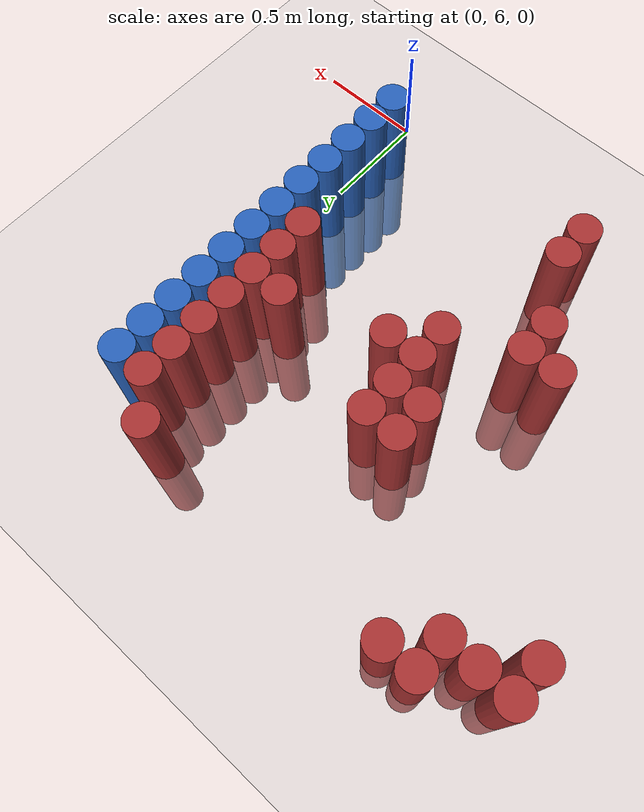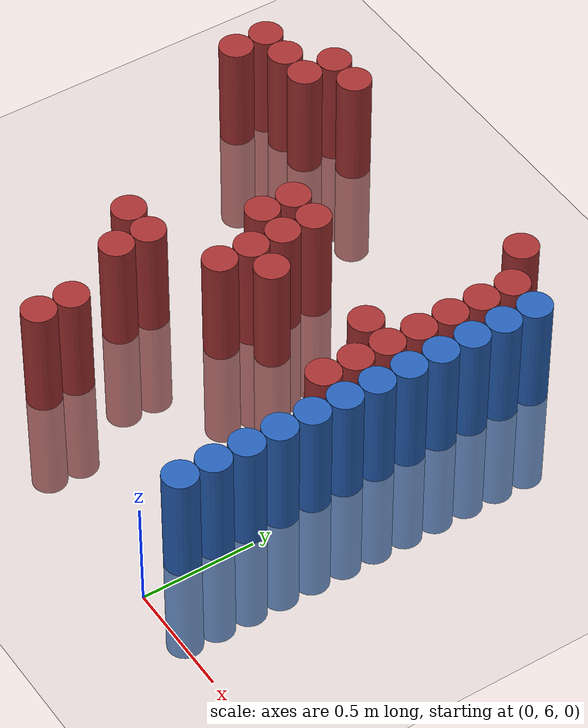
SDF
<sdf version="1.6">
 <world name="default">
  <model name="ground_plane">
   <static>1</static>
   <link name="link">
    <collision name="collision">
     <geometry><plane><normal>0 0 1</normal><size>100 100</size></plane></geometry>
     <surface><friction><ode><mu>100</mu><mu2>50</mu2></ode></friction></surface>
    </collision>
    <visual name="visual">
     <cast_shadows>0</cast_shadows>
     <geometry><plane><normal>0 0 1</normal><size>100 100</size></plane></geometry>
     <material>
      <script><uri>file://media/materials/scripts/gazebo.material</uri><name>Gazebo/Grey</name></script>
     </material>
    </visual>
   </link>
  </model>
  <model name="unit_cylinder_208">
   <static>1</static>
   <pose>-2.025000 7.725000 0.000000 0.000000 0.000000 0.000000</pose>
   <link name="link">
    <inertial>
     <mass>1</mass>
     <inertia><ixx>0.145833</ixx><ixy>0</ixy><ixz>0</ixz><iyy>0.145833</iyy><iyz>0</iyz><izz>0.125</izz></inertia>
    </inertial>
    <collision name="collision">
     <geometry><cylinder><radius>0.075000</radius><length>1</length></cylinder></geometry>
    </collision>
    <visual name="visual">
     <geometry><cylinder><radius>0.075000</radius><length>1</length></cylinder></geometry>
     <material>
      <ambient>0.648000 0.192000 0.192000 1</ambient>
      <diffuse>0.648000 0.192000 0.192000 1</diffuse>
     </material>
     <material>
      <script><name>Gazebo/Grey</name><uri>file://media/materials/scripts/gazebo.material</uri></script>
     </material>
    </visual>
    <sensor name="sensor_contact" type="contact"><contact><collision>collision</collision></contact></sensor>
   </link>
   <plugin filename="gz-sim-touchplugin-system" name="gz::sim::systems::TouchPlugin">
    <target>robot</target>
    <namespace>robot</namespace>
    <time>0.001</time>
    <enabled>true</enabled>
   </plugin>
  </model>
  <model name="unit_cylinder_209">
   <static>1</static>
   <pose>-2.025000 7.875000 0.000000 0.000000 0.000000 0.000000</pose>
   <link name="link">
    <inertial>
     <mass>1</mass>
     <inertia><ixx>0.145833</ixx><ixy>0</ixy><ixz>0</ixz><iyy>0.145833</iyy><iyz>0</iyz><izz>0.125</izz></inertia>
    </inertial>
    <collision name="collision">
     <geometry><cylinder><radius>0.075000</radius><length>1</length></cylinder></geometry>
    </collision>
    <visual name="visual">
     <geometry><cylinder><radius>0.075000</radius><length>1</length></cylinder></geometry>
     <material>
      <ambient>0.648000 0.192000 0.192000 1</ambient>
      <diffuse>0.648000 0.192000 0.192000 1</diffuse>
     </material>
     <material>
      <script><name>Gazebo/Grey</name><uri>file://media/materials/scripts/gazebo.material</uri></script>
     </material>
    </visual>
    <sensor name="sensor_contact" type="contact"><contact><collision>collision</collision></contact></sensor>
   </link>
   <plugin filename="gz-sim-touchplugin-system" name="gz::sim::systems::TouchPlugin">
    <target>robot</target>
    <namespace>robot</namespace>
    <time>0.001</time>
    <enabled>true</enabled>
   </plugin>
  </model>
  <model name="unit_cylinder_213">
   <static>1</static>
   <pose>-1.875000 7.875000 0.000000 0.000000 0.000000 0.000000</pose>
   <link name="link">
    <inertial>
     <mass>1</mass>
     <inertia><ixx>0.145833</ixx><ixy>0</ixy><ixz>0</ixz><iyy>0.145833</iyy><iyz>0</iyz><izz>0.125</izz></inertia>
    </inertial>
    <collision name="collision">
     <geometry><cylinder><radius>0.075000</radius><length>1</length></cylinder></geometry>
    </collision>
    <visual name="visual">
     <geometry><cylinder><radius>0.075000</radius><length>1</length></cylinder></geometry>
     <material>
      <ambient>0.648000 0.192000 0.192000 1</ambient>
      <diffuse>0.648000 0.192000 0.192000 1</diffuse>
     </material>
     <material>
      <script><name>Gazebo/Grey</name><uri>file://media/materials/scripts/gazebo.material</uri></script>
     </material>
    </visual>
    <sensor name="sensor_contact" type="contact"><contact><collision>collision</collision></contact></sensor>
   </link>
   <plugin filename="gz-sim-touchplugin-system" name="gz::sim::systems::TouchPlugin">
    <target>robot</target>
    <namespace>robot</namespace>
    <time>0.001</time>
    <enabled>true</enabled>
   </plugin>
  </model>
  <model name="unit_cylinder_218">
   <static>1</static>
   <pose>-1.725000 7.875000 0.000000 0.000000 0.000000 0.000000</pose>
   <link name="link">
    <inertial>
     <mass>1</mass>
     <inertia><ixx>0.145833</ixx><ixy>0</ixy><ixz>0</ixz><iyy>0.145833</iyy><iyz>0</iyz><izz>0.125</izz></inertia>
    </inertial>
    <collision name="collision">
     <geometry><cylinder><radius>0.075000</radius><length>1</length></cylinder></geometry>
    </collision>
    <visual name="visual">
     <geometry><cylinder><radius>0.075000</radius><length>1</length></cylinder></geometry>
     <material>
      <ambient>0.648000 0.192000 0.192000 1</ambient>
      <diffuse>0.648000 0.192000 0.192000 1</diffuse>
     </material>
     <material>
      <script><name>Gazebo/Grey</name><uri>file://media/materials/scripts/gazebo.material</uri></script>
     </material>
    </visual>
    <sensor name="sensor_contact" type="contact"><contact><collision>collision</collision></contact></sensor>
   </link>
   <plugin filename="gz-sim-touchplugin-system" name="gz::sim::systems::TouchPlugin">
    <target>robot</target>
    <namespace>robot</namespace>
    <time>0.001</time>
    <enabled>true</enabled>
   </plugin>
  </model>
  <model name="unit_cylinder_219">
   <static>1</static>
   <pose>-1.725000 8.025000 0.000000 0.000000 0.000000 0.000000</pose>
   <link name="link">
    <inertial>
     <mass>1</mass>
     <inertia><ixx>0.145833</ixx><ixy>0</ixy><ixz>0</ixz><iyy>0.145833</iyy><iyz>0</iyz><izz>0.125</izz></inertia>
    </inertial>
    <collision name="collision">
     <geometry><cylinder><radius>0.075000</radius><length>1</length></cylinder></geometry>
    </collision>
    <visual name="visual">
     <geometry><cylinder><radius>0.075000</radius><length>1</length></cylinder></geometry>
     <material>
      <ambient>0.648000 0.192000 0.192000 1</ambient>
      <diffuse>0.648000 0.192000 0.192000 1</diffuse>
     </material>
     <material>
      <script><name>Gazebo/Grey</name><uri>file://media/materials/scripts/gazebo.material</uri></script>
     </material>
    </visual>
    <sensor name="sensor_contact" type="contact"><contact><collision>collision</collision></contact></sensor>
   </link>
   <plugin filename="gz-sim-touchplugin-system" name="gz::sim::systems::TouchPlugin">
    <target>robot</target>
    <namespace>robot</namespace>
    <time>0.001</time>
    <enabled>true</enabled>
   </plugin>
  </model>
  <model name="unit_cylinder_225">
   <static>1</static>
   <pose>-1.575000 8.025000 0.000000 0.000000 0.000000 0.000000</pose>
   <link name="link">
    <inertial>
     <mass>1</mass>
     <inertia><ixx>0.145833</ixx><ixy>0</ixy><ixz>0</ixz><iyy>0.145833</iyy><iyz>0</iyz><izz>0.125</izz></inertia>
    </inertial>
    <collision name="collision">
     <geometry><cylinder><radius>0.075000</radius><length>1</length></cylinder></geometry>
    </collision>
    <visual name="visual">
     <geometry><cylinder><radius>0.075000</radius><length>1</length></cylinder></geometry>
     <material>
      <ambient>0.648000 0.192000 0.192000 1</ambient>
      <diffuse>0.648000 0.192000 0.192000 1</diffuse>
     </material>
     <material>
      <script><name>Gazebo/Grey</name><uri>file://media/materials/scripts/gazebo.material</uri></script>
     </material>
    </visual>
    <sensor name="sensor_contact" type="contact"><contact><collision>collision</collision></contact></sensor>
   </link>
   <plugin filename="gz-sim-touchplugin-system" name="gz::sim::systems::TouchPlugin">
    <target>robot</target>
    <namespace>robot</namespace>
    <time>0.001</time>
    <enabled>true</enabled>
   </plugin>
  </model>
  <model name="unit_cylinder_228">
   <static>1</static>
   <pose>-1.425000 6.825000 0.000000 0.000000 0.000000 0.000000</pose>
   <link name="link">
    <inertial>
     <mass>1</mass>
     <inertia><ixx>0.145833</ixx><ixy>0</ixy><ixz>0</ixz><iyy>0.145833</iyy><iyz>0</iyz><izz>0.125</izz></inertia>
    </inertial>
    <collision name="collision">
     <geometry><cylinder><radius>0.075000</radius><length>1</length></cylinder></geometry>
    </collision>
    <visual name="visual">
     <geometry><cylinder><radius>0.075000</radius><length>1</length></cylinder></geometry>
     <material>
      <ambient>0.648000 0.192000 0.192000 1</ambient>
      <diffuse>0.648000 0.192000 0.192000 1</diffuse>
     </material>
     <material>
      <script><name>Gazebo/Grey</name><uri>file://media/materials/scripts/gazebo.material</uri></script>
     </material>
    </visual>
    <sensor name="sensor_contact" type="contact"><contact><collision>collision</collision></contact></sensor>
   </link>
   <plugin filename="gz-sim-touchplugin-system" name="gz::sim::systems::TouchPlugin">
    <target>robot</target>
    <namespace>robot</namespace>
    <time>0.001</time>
    <enabled>true</enabled>
   </plugin>
  </model>
  <model name="unit_cylinder_233">
   <static>1</static>
   <pose>-1.275000 6.675000 0.000000 0.000000 0.000000 0.000000</pose>
   <link name="link">
    <inertial>
     <mass>1</mass>
     <inertia><ixx>0.145833</ixx><ixy>0</ixy><ixz>0</ixz><iyy>0.145833</iyy><iyz>0</iyz><izz>0.125</izz></inertia>
    </inertial>
    <collision name="collision">
     <geometry><cylinder><radius>0.075000</radius><length>1</length></cylinder></geometry>
    </collision>
    <visual name="visual">
     <geometry><cylinder><radius>0.075000</radius><length>1</length></cylinder></geometry>
     <material>
      <ambient>0.648000 0.192000 0.192000 1</ambient>
      <diffuse>0.648000 0.192000 0.192000 1</diffuse>
     </material>
     <material>
      <script><name>Gazebo/Grey</name><uri>file://media/materials/scripts/gazebo.material</uri></script>
     </material>
    </visual>
    <sensor name="sensor_contact" type="contact"><contact><collision>collision</collision></contact></sensor>
   </link>
   <plugin filename="gz-sim-touchplugin-system" name="gz::sim::systems::TouchPlugin">
    <target>robot</target>
    <namespace>robot</namespace>
    <time>0.001</time>
    <enabled>true</enabled>
   </plugin>
  </model>
  <model name="unit_cylinder_234">
   <static>1</static>
   <pose>-1.275000 6.825000 0.000000 0.000000 0.000000 0.000000</pose>
   <link name="link">
    <inertial>
     <mass>1</mass>
     <inertia><ixx>0.145833</ixx><ixy>0</ixy><ixz>0</ixz><iyy>0.145833</iyy><iyz>0</iyz><izz>0.125</izz></inertia>
    </inertial>
    <collision name="collision">
     <geometry><cylinder><radius>0.075000</radius><length>1</length></cylinder></geometry>
    </collision>
    <visual name="visual">
     <geometry><cylinder><radius>0.075000</radius><length>1</length></cylinder></geometry>
     <material>
      <ambient>0.648000 0.192000 0.192000 1</ambient>
      <diffuse>0.648000 0.192000 0.192000 1</diffuse>
     </material>
     <material>
      <script><name>Gazebo/Grey</name><uri>file://media/materials/scripts/gazebo.material</uri></script>
     </material>
    </visual>
    <sensor name="sensor_contact" type="contact"><contact><collision>collision</collision></contact></sensor>
   </link>
   <plugin filename="gz-sim-touchplugin-system" name="gz::sim::systems::TouchPlugin">
    <target>robot</target>
    <namespace>robot</namespace>
    <time>0.001</time>
    <enabled>true</enabled>
   </plugin>
  </model>
  <model name="unit_cylinder_238">
   <static>1</static>
   <pose>-1.125000 6.225000 0.000000 0.000000 0.000000 0.000000</pose>
   <link name="link">
    <inertial>
     <mass>1</mass>
     <inertia><ixx>0.145833</ixx><ixy>0</ixy><ixz>0</ixz><iyy>0.145833</iyy><iyz>0</iyz><izz>0.125</izz></inertia>
    </inertial>
    <collision name="collision">
     <geometry><cylinder><radius>0.075000</radius><length>1</length></cylinder></geometry>
    </collision>
    <visual name="visual">
     <geometry><cylinder><radius>0.075000</radius><length>1</length></cylinder></geometry>
     <material>
      <ambient>0.648000 0.192000 0.192000 1</ambient>
      <diffuse>0.648000 0.192000 0.192000 1</diffuse>
     </material>
     <material>
      <script><name>Gazebo/Grey</name><uri>file://media/materials/scripts/gazebo.material</uri></script>
     </material>
    </visual>
    <sensor name="sensor_contact" type="contact"><contact><collision>collision</collision></contact></sensor>
   </link>
   <plugin filename="gz-sim-touchplugin-system" name="gz::sim::systems::TouchPlugin">
    <target>robot</target>
    <namespace>robot</namespace>
    <time>0.001</time>
    <enabled>true</enabled>
   </plugin>
  </model>
  <model name="unit_cylinder_239">
   <static>1</static>
   <pose>-1.125000 6.375000 0.000000 0.000000 0.000000 0.000000</pose>
   <link name="link">
    <inertial>
     <mass>1</mass>
     <inertia><ixx>0.145833</ixx><ixy>0</ixy><ixz>0</ixz><iyy>0.145833</iyy><iyz>0</iyz><izz>0.125</izz></inertia>
    </inertial>
    <collision name="collision">
     <geometry><cylinder><radius>0.075000</radius><length>1</length></cylinder></geometry>
    </collision>
    <visual name="visual">
     <geometry><cylinder><radius>0.075000</radius><length>1</length></cylinder></geometry>
     <material>
      <ambient>0.648000 0.192000 0.192000 1</ambient>
      <diffuse>0.648000 0.192000 0.192000 1</diffuse>
     </material>
     <material>
      <script><name>Gazebo/Grey</name><uri>file://media/materials/scripts/gazebo.material</uri></script>
     </material>
    </visual>
    <sensor name="sensor_contact" type="contact"><contact><collision>collision</collision></contact></sensor>
   </link>
   <plugin filename="gz-sim-touchplugin-system" name="gz::sim::systems::TouchPlugin">
    <target>robot</target>
    <namespace>robot</namespace>
    <time>0.001</time>
    <enabled>true</enabled>
   </plugin>
  </model>
  <model name="unit_cylinder_240">
   <static>1</static>
   <pose>-1.125000 7.275000 0.000000 0.000000 0.000000 0.000000</pose>
   <link name="link">
    <inertial>
     <mass>1</mass>
     <inertia><ixx>0.145833</ixx><ixy>0</ixy><ixz>0</ixz><iyy>0.145833</iyy><iyz>0</iyz><izz>0.125</izz></inertia>
    </inertial>
    <collision name="collision">
     <geometry><cylinder><radius>0.075000</radius><length>1</length></cylinder></geometry>
    </collision>
    <visual name="visual">
     <geometry><cylinder><radius>0.075000</radius><length>1</length></cylinder></geometry>
     <material>
      <ambient>0.648000 0.192000 0.192000 1</ambient>
      <diffuse>0.648000 0.192000 0.192000 1</diffuse>
     </material>
     <material>
      <script><name>Gazebo/Grey</name><uri>file://media/materials/scripts/gazebo.material</uri></script>
     </material>
    </visual>
    <sensor name="sensor_contact" type="contact"><contact><collision>collision</collision></contact></sensor>
   </link>
   <plugin filename="gz-sim-touchplugin-system" name="gz::sim::systems::TouchPlugin">
    <target>robot</target>
    <namespace>robot</namespace>
    <time>0.001</time>
    <enabled>true</enabled>
   </plugin>
  </model>
  <model name="unit_cylinder_241">
   <static>1</static>
   <pose>-1.125000 7.425000 0.000000 0.000000 0.000000 0.000000</pose>
   <link name="link">
    <inertial>
     <mass>1</mass>
     <inertia><ixx>0.145833</ixx><ixy>0</ixy><ixz>0</ixz><iyy>0.145833</iyy><iyz>0</iyz><izz>0.125</izz></inertia>
    </inertial>
    <collision name="collision">
     <geometry><cylinder><radius>0.075000</radius><length>1</length></cylinder></geometry>
    </collision>
    <visual name="visual">
     <geometry><cylinder><radius>0.075000</radius><length>1</length></cylinder></geometry>
     <material>
      <ambient>0.648000 0.192000 0.192000 1</ambient>
      <diffuse>0.648000 0.192000 0.192000 1</diffuse>
     </material>
     <material>
      <script><name>Gazebo/Grey</name><uri>file://media/materials/scripts/gazebo.material</uri></script>
     </material>
    </visual>
    <sensor name="sensor_contact" type="contact"><contact><collision>collision</collision></contact></sensor>
   </link>
   <plugin filename="gz-sim-touchplugin-system" name="gz::sim::systems::TouchPlugin">
    <target>robot</target>
    <namespace>robot</namespace>
    <time>0.001</time>
    <enabled>true</enabled>
   </plugin>
  </model>
  <model name="unit_cylinder_246">
   <static>1</static>
   <pose>-0.975000 6.975000 0.000000 0.000000 0.000000 0.000000</pose>
   <link name="link">
    <inertial>
     <mass>1</mass>
     <inertia><ixx>0.145833</ixx><ixy>0</ixy><ixz>0</ixz><iyy>0.145833</iyy><iyz>0</iyz><izz>0.125</izz></inertia>
    </inertial>
    <collision name="collision">
     <geometry><cylinder><radius>0.075000</radius><length>1</length></cylinder></geometry>
    </collision>
    <visual name="visual">
     <geometry><cylinder><radius>0.075000</radius><length>1</length></cylinder></geometry>
     <material>
      <ambient>0.648000 0.192000 0.192000 1</ambient>
      <diffuse>0.648000 0.192000 0.192000 1</diffuse>
     </material>
     <material>
      <script><name>Gazebo/Grey</name><uri>file://media/materials/scripts/gazebo.material</uri></script>
     </material>
    </visual>
    <sensor name="sensor_contact" type="contact"><contact><collision>collision</collision></contact></sensor>
   </link>
   <plugin filename="gz-sim-touchplugin-system" name="gz::sim::systems::TouchPlugin">
    <target>robot</target>
    <namespace>robot</namespace>
    <time>0.001</time>
    <enabled>true</enabled>
   </plugin>
  </model>
  <model name="unit_cylinder_247">
   <static>1</static>
   <pose>-0.975000 7.125000 0.000000 0.000000 0.000000 0.000000</pose>
   <link name="link">
    <inertial>
     <mass>1</mass>
     <inertia><ixx>0.145833</ixx><ixy>0</ixy><ixz>0</ixz><iyy>0.145833</iyy><iyz>0</iyz><izz>0.125</izz></inertia>
    </inertial>
    <collision name="collision">
     <geometry><cylinder><radius>0.075000</radius><length>1</length></cylinder></geometry>
    </collision>
    <visual name="visual">
     <geometry><cylinder><radius>0.075000</radius><length>1</length></cylinder></geometry>
     <material>
      <ambient>0.648000 0.192000 0.192000 1</ambient>
      <diffuse>0.648000 0.192000 0.192000 1</diffuse>
     </material>
     <material>
      <script><name>Gazebo/Grey</name><uri>file://media/materials/scripts/gazebo.material</uri></script>
     </material>
    </visual>
    <sensor name="sensor_contact" type="contact"><contact><collision>collision</collision></contact></sensor>
   </link>
   <plugin filename="gz-sim-touchplugin-system" name="gz::sim::systems::TouchPlugin">
    <target>robot</target>
    <namespace>robot</namespace>
    <time>0.001</time>
    <enabled>true</enabled>
   </plugin>
  </model>
  <model name="unit_cylinder_248">
   <static>1</static>
   <pose>-0.975000 7.275000 0.000000 0.000000 0.000000 0.000000</pose>
   <link name="link">
    <inertial>
     <mass>1</mass>
     <inertia><ixx>0.145833</ixx><ixy>0</ixy><ixz>0</ixz><iyy>0.145833</iyy><iyz>0</iyz><izz>0.125</izz></inertia>
    </inertial>
    <collision name="collision">
     <geometry><cylinder><radius>0.075000</radius><length>1</length></cylinder></geometry>
    </collision>
    <visual name="visual">
     <geometry><cylinder><radius>0.075000</radius><length>1</length></cylinder></geometry>
     <material>
      <ambient>0.648000 0.192000 0.192000 1</ambient>
      <diffuse>0.648000 0.192000 0.192000 1</diffuse>
     </material>
     <material>
      <script><name>Gazebo/Grey</name><uri>file://media/materials/scripts/gazebo.material</uri></script>
     </material>
    </visual>
    <sensor name="sensor_contact" type="contact"><contact><collision>collision</collision></contact></sensor>
   </link>
   <plugin filename="gz-sim-touchplugin-system" name="gz::sim::systems::TouchPlugin">
    <target>robot</target>
    <namespace>robot</namespace>
    <time>0.001</time>
    <enabled>true</enabled>
   </plugin>
  </model>
  <model name="unit_cylinder_249">
   <static>1</static>
   <pose>-0.975000 7.425000 0.000000 0.000000 0.000000 0.000000</pose>
   <link name="link">
    <inertial>
     <mass>1</mass>
     <inertia><ixx>0.145833</ixx><ixy>0</ixy><ixz>0</ixz><iyy>0.145833</iyy><iyz>0</iyz><izz>0.125</izz></inertia>
    </inertial>
    <collision name="collision">
     <geometry><cylinder><radius>0.075000</radius><length>1</length></cylinder></geometry>
    </collision>
    <visual name="visual">
     <geometry><cylinder><radius>0.075000</radius><length>1</length></cylinder></geometry>
     <material>
      <ambient>0.648000 0.192000 0.192000 1</ambient>
      <diffuse>0.648000 0.192000 0.192000 1</diffuse>
     </material>
     <material>
      <script><name>Gazebo/Grey</name><uri>file://media/materials/scripts/gazebo.material</uri></script>
     </material>
    </visual>
    <sensor name="sensor_contact" type="contact"><contact><collision>collision</collision></contact></sensor>
   </link>
   <plugin filename="gz-sim-touchplugin-system" name="gz::sim::systems::TouchPlugin">
    <target>robot</target>
    <namespace>robot</namespace>
    <time>0.001</time>
    <enabled>true</enabled>
   </plugin>
  </model>
  <model name="unit_cylinder_253">
   <static>1</static>
   <pose>-0.825000 7.125000 0.000000 0.000000 0.000000 0.000000</pose>
   <link name="link">
    <inertial>
     <mass>1</mass>
     <inertia><ixx>0.145833</ixx><ixy>0</ixy><ixz>0</ixz><iyy>0.145833</iyy><iyz>0</iyz><izz>0.125</izz></inertia>
    </inertial>
    <collision name="collision">
     <geometry><cylinder><radius>0.075000</radius><length>1</length></cylinder></geometry>
    </collision>
    <visual name="visual">
     <geometry><cylinder><radius>0.075000</radius><length>1</length></cylinder></geometry>
     <material>
      <ambient>0.648000 0.192000 0.192000 1</ambient>
      <diffuse>0.648000 0.192000 0.192000 1</diffuse>
     </material>
     <material>
      <script><name>Gazebo/Grey</name><uri>file://media/materials/scripts/gazebo.material</uri></script>
     </material>
    </visual>
    <sensor name="sensor_contact" type="contact"><contact><collision>collision</collision></contact></sensor>
   </link>
   <plugin filename="gz-sim-touchplugin-system" name="gz::sim::systems::TouchPlugin">
    <target>robot</target>
    <namespace>robot</namespace>
    <time>0.001</time>
    <enabled>true</enabled>
   </plugin>
  </model>
  <model name="unit_cylinder_258">
   <static>1</static>
   <pose>-0.375000 7.275000 0.000000 0.000000 0.000000 0.000000</pose>
   <link name="link">
    <inertial>
     <mass>1</mass>
     <inertia><ixx>0.145833</ixx><ixy>0</ixy><ixz>0</ixz><iyy>0.145833</iyy><iyz>0</iyz><izz>0.125</izz></inertia>
    </inertial>
    <collision name="collision">
     <geometry><cylinder><radius>0.075000</radius><length>1</length></cylinder></geometry>
    </collision>
    <visual name="visual">
     <geometry><cylinder><radius>0.075000</radius><length>1</length></cylinder></geometry>
     <material>
      <ambient>0.648000 0.192000 0.192000 1</ambient>
      <diffuse>0.648000 0.192000 0.192000 1</diffuse>
     </material>
     <material>
      <script><name>Gazebo/Grey</name><uri>file://media/materials/scripts/gazebo.material</uri></script>
     </material>
    </visual>
    <sensor name="sensor_contact" type="contact"><contact><collision>collision</collision></contact></sensor>
   </link>
   <plugin filename="gz-sim-touchplugin-system" name="gz::sim::systems::TouchPlugin">
    <target>robot</target>
    <namespace>robot</namespace>
    <time>0.001</time>
    <enabled>true</enabled>
   </plugin>
  </model>
  <model name="unit_cylinder_259">
   <static>1</static>
   <pose>-0.375000 8.025000 0.000000 0.000000 0.000000 0.000000</pose>
   <link name="link">
    <inertial>
     <mass>1</mass>
     <inertia><ixx>0.145833</ixx><ixy>0</ixy><ixz>0</ixz><iyy>0.145833</iyy><iyz>0</iyz><izz>0.125</izz></inertia>
    </inertial>
    <collision name="collision">
     <geometry><cylinder><radius>0.075000</radius><length>1</length></cylinder></geometry>
    </collision>
    <visual name="visual">
     <geometry><cylinder><radius>0.075000</radius><length>1</length></cylinder></geometry>
     <material>
      <ambient>0.648000 0.192000 0.192000 1</ambient>
      <diffuse>0.648000 0.192000 0.192000 1</diffuse>
     </material>
     <material>
      <script><name>Gazebo/Grey</name><uri>file://media/materials/scripts/gazebo.material</uri></script>
     </material>
    </visual>
    <sensor name="sensor_contact" type="contact"><contact><collision>collision</collision></contact></sensor>
   </link>
   <plugin filename="gz-sim-touchplugin-system" name="gz::sim::systems::TouchPlugin">
    <target>robot</target>
    <namespace>robot</namespace>
    <time>0.001</time>
    <enabled>true</enabled>
   </plugin>
  </model>
  <model name="unit_cylinder_268">
   <static>1</static>
   <pose>-0.225000 6.975000 0.000000 0.000000 0.000000 0.000000</pose>
   <link name="link">
    <inertial>
     <mass>1</mass>
     <inertia><ixx>0.145833</ixx><ixy>0</ixy><ixz>0</ixz><iyy>0.145833</iyy><iyz>0</iyz><izz>0.125</izz></inertia>
    </inertial>
    <collision name="collision">
     <geometry><cylinder><radius>0.075000</radius><length>1</length></cylinder></geometry>
    </collision>
    <visual name="visual">
     <geometry><cylinder><radius>0.075000</radius><length>1</length></cylinder></geometry>
     <material>
      <ambient>0.648000 0.192000 0.192000 1</ambient>
      <diffuse>0.648000 0.192000 0.192000 1</diffuse>
     </material>
     <material>
      <script><name>Gazebo/Grey</name><uri>file://media/materials/scripts/gazebo.material</uri></script>
     </material>
    </visual>
    <sensor name="sensor_contact" type="contact"><contact><collision>collision</collision></contact></sensor>
   </link>
   <plugin filename="gz-sim-touchplugin-system" name="gz::sim::systems::TouchPlugin">
    <target>robot</target>
    <namespace>robot</namespace>
    <time>0.001</time>
    <enabled>true</enabled>
   </plugin>
  </model>
  <model name="unit_cylinder_269">
   <static>1</static>
   <pose>-0.225000 7.125000 0.000000 0.000000 0.000000 0.000000</pose>
   <link name="link">
    <inertial>
     <mass>1</mass>
     <inertia><ixx>0.145833</ixx><ixy>0</ixy><ixz>0</ixz><iyy>0.145833</iyy><iyz>0</iyz><izz>0.125</izz></inertia>
    </inertial>
    <collision name="collision">
     <geometry><cylinder><radius>0.075000</radius><length>1</length></cylinder></geometry>
    </collision>
    <visual name="visual">
     <geometry><cylinder><radius>0.075000</radius><length>1</length></cylinder></geometry>
     <material>
      <ambient>0.648000 0.192000 0.192000 1</ambient>
      <diffuse>0.648000 0.192000 0.192000 1</diffuse>
     </material>
     <material>
      <script><name>Gazebo/Grey</name><uri>file://media/materials/scripts/gazebo.material</uri></script>
     </material>
    </visual>
    <sensor name="sensor_contact" type="contact"><contact><collision>collision</collision></contact></sensor>
   </link>
   <plugin filename="gz-sim-touchplugin-system" name="gz::sim::systems::TouchPlugin">
    <target>robot</target>
    <namespace>robot</namespace>
    <time>0.001</time>
    <enabled>true</enabled>
   </plugin>
  </model>
  <model name="unit_cylinder_270">
   <static>1</static>
   <pose>-0.225000 7.275000 0.000000 0.000000 0.000000 0.000000</pose>
   <link name="link">
    <inertial>
     <mass>1</mass>
     <inertia><ixx>0.145833</ixx><ixy>0</ixy><ixz>0</ixz><iyy>0.145833</iyy><iyz>0</iyz><izz>0.125</izz></inertia>
    </inertial>
    <collision name="collision">
     <geometry><cylinder><radius>0.075000</radius><length>1</length></cylinder></geometry>
    </collision>
    <visual name="visual">
     <geometry><cylinder><radius>0.075000</radius><length>1</length></cylinder></geometry>
     <material>
      <ambient>0.648000 0.192000 0.192000 1</ambient>
      <diffuse>0.648000 0.192000 0.192000 1</diffuse>
     </material>
     <material>
      <script><name>Gazebo/Grey</name><uri>file://media/materials/scripts/gazebo.material</uri></script>
     </material>
    </visual>
    <sensor name="sensor_contact" type="contact"><contact><collision>collision</collision></contact></sensor>
   </link>
   <plugin filename="gz-sim-touchplugin-system" name="gz::sim::systems::TouchPlugin">
    <target>robot</target>
    <namespace>robot</namespace>
    <time>0.001</time>
    <enabled>true</enabled>
   </plugin>
  </model>
  <model name="unit_cylinder_271">
   <static>1</static>
   <pose>-0.225000 7.425000 0.000000 0.000000 0.000000 0.000000</pose>
   <link name="link">
    <inertial>
     <mass>1</mass>
     <inertia><ixx>0.145833</ixx><ixy>0</ixy><ixz>0</ixz><iyy>0.145833</iyy><iyz>0</iyz><izz>0.125</izz></inertia>
    </inertial>
    <collision name="collision">
     <geometry><cylinder><radius>0.075000</radius><length>1</length></cylinder></geometry>
    </collision>
    <visual name="visual">
     <geometry><cylinder><radius>0.075000</radius><length>1</length></cylinder></geometry>
     <material>
      <ambient>0.648000 0.192000 0.192000 1</ambient>
      <diffuse>0.648000 0.192000 0.192000 1</diffuse>
     </material>
     <material>
      <script><name>Gazebo/Grey</name><uri>file://media/materials/scripts/gazebo.material</uri></script>
     </material>
    </visual>
    <sensor name="sensor_contact" type="contact"><contact><collision>collision</collision></contact></sensor>
   </link>
   <plugin filename="gz-sim-touchplugin-system" name="gz::sim::systems::TouchPlugin">
    <target>robot</target>
    <namespace>robot</namespace>
    <time>0.001</time>
    <enabled>true</enabled>
   </plugin>
  </model>
  <model name="unit_cylinder_272">
   <static>1</static>
   <pose>-0.225000 7.575000 0.000000 0.000000 0.000000 0.000000</pose>
   <link name="link">
    <inertial>
     <mass>1</mass>
     <inertia><ixx>0.145833</ixx><ixy>0</ixy><ixz>0</ixz><iyy>0.145833</iyy><iyz>0</iyz><izz>0.125</izz></inertia>
    </inertial>
    <collision name="collision">
     <geometry><cylinder><radius>0.075000</radius><length>1</length></cylinder></geometry>
    </collision>
    <visual name="visual">
     <geometry><cylinder><radius>0.075000</radius><length>1</length></cylinder></geometry>
     <material>
      <ambient>0.648000 0.192000 0.192000 1</ambient>
      <diffuse>0.648000 0.192000 0.192000 1</diffuse>
     </material>
     <material>
      <script><name>Gazebo/Grey</name><uri>file://media/materials/scripts/gazebo.material</uri></script>
     </material>
    </visual>
    <sensor name="sensor_contact" type="contact"><contact><collision>collision</collision></contact></sensor>
   </link>
   <plugin filename="gz-sim-touchplugin-system" name="gz::sim::systems::TouchPlugin">
    <target>robot</target>
    <namespace>robot</namespace>
    <time>0.001</time>
    <enabled>true</enabled>
   </plugin>
  </model>
  <model name="unit_cylinder_273">
   <static>1</static>
   <pose>-0.225000 7.725000 0.000000 0.000000 0.000000 0.000000</pose>
   <link name="link">
    <inertial>
     <mass>1</mass>
     <inertia><ixx>0.145833</ixx><ixy>0</ixy><ixz>0</ixz><iyy>0.145833</iyy><iyz>0</iyz><izz>0.125</izz></inertia>
    </inertial>
    <collision name="collision">
     <geometry><cylinder><radius>0.075000</radius><length>1</length></cylinder></geometry>
    </collision>
    <visual name="visual">
     <geometry><cylinder><radius>0.075000</radius><length>1</length></cylinder></geometry>
     <material>
      <ambient>0.648000 0.192000 0.192000 1</ambient>
      <diffuse>0.648000 0.192000 0.192000 1</diffuse>
     </material>
     <material>
      <script><name>Gazebo/Grey</name><uri>file://media/materials/scripts/gazebo.material</uri></script>
     </material>
    </visual>
    <sensor name="sensor_contact" type="contact"><contact><collision>collision</collision></contact></sensor>
   </link>
   <plugin filename="gz-sim-touchplugin-system" name="gz::sim::systems::TouchPlugin">
    <target>robot</target>
    <namespace>robot</namespace>
    <time>0.001</time>
    <enabled>true</enabled>
   </plugin>
  </model>
  <model name="unit_cylinder_274">
   <static>1</static>
   <pose>-0.225000 7.875000 0.000000 0.000000 0.000000 0.000000</pose>
   <link name="link">
    <inertial>
     <mass>1</mass>
     <inertia><ixx>0.145833</ixx><ixy>0</ixy><ixz>0</ixz><iyy>0.145833</iyy><iyz>0</iyz><izz>0.125</izz></inertia>
    </inertial>
    <collision name="collision">
     <geometry><cylinder><radius>0.075000</radius><length>1</length></cylinder></geometry>
    </collision>
    <visual name="visual">
     <geometry><cylinder><radius>0.075000</radius><length>1</length></cylinder></geometry>
     <material>
      <ambient>0.648000 0.192000 0.192000 1</ambient>
      <diffuse>0.648000 0.192000 0.192000 1</diffuse>
     </material>
     <material>
      <script><name>Gazebo/Grey</name><uri>file://media/materials/scripts/gazebo.material</uri></script>
     </material>
    </visual>
    <sensor name="sensor_contact" type="contact"><contact><collision>collision</collision></contact></sensor>
   </link>
   <plugin filename="gz-sim-touchplugin-system" name="gz::sim::systems::TouchPlugin">
    <target>robot</target>
    <namespace>robot</namespace>
    <time>0.001</time>
    <enabled>true</enabled>
   </plugin>
  </model>
  <model name="unit_cylinder_291">
   <static>1</static>
   <pose>-0.075000 6.225000 0.000000 0.000000 0.000000 0.000000</pose>
   <link name="link">
    <inertial>
     <mass>1</mass>
     <inertia><ixx>0.145833</ixx><ixy>0</ixy><ixz>0</ixz><iyy>0.145833</iyy><iyz>0</iyz><izz>0.125</izz></inertia>
    </inertial>
    <collision name="collision">
     <geometry><cylinder><radius>0.075000</radius><length>1</length></cylinder></geometry>
    </collision>
    <visual name="visual">
     <geometry><cylinder><radius>0.075000</radius><length>1</length></cylinder></geometry>
     <material>
      <ambient>0.152000 0.379000 0.720000 1</ambient>
      <diffuse>0.152000 0.379000 0.720000 1</diffuse>
     </material>
     <material>
      <script><name>Gazebo/Grey</name><uri>file://media/materials/scripts/gazebo.material</uri></script>
     </material>
    </visual>
    <sensor name="sensor_contact" type="contact"><contact><collision>collision</collision></contact></sensor>
   </link>
   <plugin filename="gz-sim-touchplugin-system" name="gz::sim::systems::TouchPlugin">
    <target>robot</target>
    <namespace>robot</namespace>
    <time>0.001</time>
    <enabled>true</enabled>
   </plugin>
  </model>
  <model name="unit_cylinder_292">
   <static>1</static>
   <pose>-0.075000 6.375000 0.000000 0.000000 0.000000 0.000000</pose>
   <link name="link">
    <inertial>
     <mass>1</mass>
     <inertia><ixx>0.145833</ixx><ixy>0</ixy><ixz>0</ixz><iyy>0.145833</iyy><iyz>0</iyz><izz>0.125</izz></inertia>
    </inertial>
    <collision name="collision">
     <geometry><cylinder><radius>0.075000</radius><length>1</length></cylinder></geometry>
    </collision>
    <visual name="visual">
     <geometry><cylinder><radius>0.075000</radius><length>1</length></cylinder></geometry>
     <material>
      <ambient>0.152000 0.379000 0.720000 1</ambient>
      <diffuse>0.152000 0.379000 0.720000 1</diffuse>
     </material>
     <material>
      <script><name>Gazebo/Grey</name><uri>file://media/materials/scripts/gazebo.material</uri></script>
     </material>
    </visual>
    <sensor name="sensor_contact" type="contact"><contact><collision>collision</collision></contact></sensor>
   </link>
   <plugin filename="gz-sim-touchplugin-system" name="gz::sim::systems::TouchPlugin">
    <target>robot</target>
    <namespace>robot</namespace>
    <time>0.001</time>
    <enabled>true</enabled>
   </plugin>
  </model>
  <model name="unit_cylinder_293">
   <static>1</static>
   <pose>-0.075000 6.525000 0.000000 0.000000 0.000000 0.000000</pose>
   <link name="link">
    <inertial>
     <mass>1</mass>
     <inertia><ixx>0.145833</ixx><ixy>0</ixy><ixz>0</ixz><iyy>0.145833</iyy><iyz>0</iyz><izz>0.125</izz></inertia>
    </inertial>
    <collision name="collision">
     <geometry><cylinder><radius>0.075000</radius><length>1</length></cylinder></geometry>
    </collision>
    <visual name="visual">
     <geometry><cylinder><radius>0.075000</radius><length>1</length></cylinder></geometry>
     <material>
      <ambient>0.152000 0.379000 0.720000 1</ambient>
      <diffuse>0.152000 0.379000 0.720000 1</diffuse>
     </material>
     <material>
      <script><name>Gazebo/Grey</name><uri>file://media/materials/scripts/gazebo.material</uri></script>
     </material>
    </visual>
    <sensor name="sensor_contact" type="contact"><contact><collision>collision</collision></contact></sensor>
   </link>
   <plugin filename="gz-sim-touchplugin-system" name="gz::sim::systems::TouchPlugin">
    <target>robot</target>
    <namespace>robot</namespace>
    <time>0.001</time>
    <enabled>true</enabled>
   </plugin>
  </model>
  <model name="unit_cylinder_294">
   <static>1</static>
   <pose>-0.075000 6.675000 0.000000 0.000000 0.000000 0.000000</pose>
   <link name="link">
    <inertial>
     <mass>1</mass>
     <inertia><ixx>0.145833</ixx><ixy>0</ixy><ixz>0</ixz><iyy>0.145833</iyy><iyz>0</iyz><izz>0.125</izz></inertia>
    </inertial>
    <collision name="collision">
     <geometry><cylinder><radius>0.075000</radius><length>1</length></cylinder></geometry>
    </collision>
    <visual name="visual">
     <geometry><cylinder><radius>0.075000</radius><length>1</length></cylinder></geometry>
     <material>
      <ambient>0.152000 0.379000 0.720000 1</ambient>
      <diffuse>0.152000 0.379000 0.720000 1</diffuse>
     </material>
     <material>
      <script><name>Gazebo/Grey</name><uri>file://media/materials/scripts/gazebo.material</uri></script>
     </material>
    </visual>
    <sensor name="sensor_contact" type="contact"><contact><collision>collision</collision></contact></sensor>
   </link>
   <plugin filename="gz-sim-touchplugin-system" name="gz::sim::systems::TouchPlugin">
    <target>robot</target>
    <namespace>robot</namespace>
    <time>0.001</time>
    <enabled>true</enabled>
   </plugin>
  </model>
  <model name="unit_cylinder_295">
   <static>1</static>
   <pose>-0.075000 6.825000 0.000000 0.000000 0.000000 0.000000</pose>
   <link name="link">
    <inertial>
     <mass>1</mass>
     <inertia><ixx>0.145833</ixx><ixy>0</ixy><ixz>0</ixz><iyy>0.145833</iyy><iyz>0</iyz><izz>0.125</izz></inertia>
    </inertial>
    <collision name="collision">
     <geometry><cylinder><radius>0.075000</radius><length>1</length></cylinder></geometry>
    </collision>
    <visual name="visual">
     <geometry><cylinder><radius>0.075000</radius><length>1</length></cylinder></geometry>
     <material>
      <ambient>0.152000 0.379000 0.720000 1</ambient>
      <diffuse>0.152000 0.379000 0.720000 1</diffuse>
     </material>
     <material>
      <script><name>Gazebo/Grey</name><uri>file://media/materials/scripts/gazebo.material</uri></script>
     </material>
    </visual>
    <sensor name="sensor_contact" type="contact"><contact><collision>collision</collision></contact></sensor>
   </link>
   <plugin filename="gz-sim-touchplugin-system" name="gz::sim::systems::TouchPlugin">
    <target>robot</target>
    <namespace>robot</namespace>
    <time>0.001</time>
    <enabled>true</enabled>
   </plugin>
  </model>
  <model name="unit_cylinder_296">
   <static>1</static>
   <pose>-0.075000 6.975000 0.000000 0.000000 0.000000 0.000000</pose>
   <link name="link">
    <inertial>
     <mass>1</mass>
     <inertia><ixx>0.145833</ixx><ixy>0</ixy><ixz>0</ixz><iyy>0.145833</iyy><iyz>0</iyz><izz>0.125</izz></inertia>
    </inertial>
    <collision name="collision">
     <geometry><cylinder><radius>0.075000</radius><length>1</length></cylinder></geometry>
    </collision>
    <visual name="visual">
     <geometry><cylinder><radius>0.075000</radius><length>1</length></cylinder></geometry>
     <material>
      <ambient>0.152000 0.379000 0.720000 1</ambient>
      <diffuse>0.152000 0.379000 0.720000 1</diffuse>
     </material>
     <material>
      <script><name>Gazebo/Grey</name><uri>file://media/materials/scripts/gazebo.material</uri></script>
     </material>
    </visual>
    <sensor name="sensor_contact" type="contact"><contact><collision>collision</collision></contact></sensor>
   </link>
   <plugin filename="gz-sim-touchplugin-system" name="gz::sim::systems::TouchPlugin">
    <target>robot</target>
    <namespace>robot</namespace>
    <time>0.001</time>
    <enabled>true</enabled>
   </plugin>
  </model>
  <model name="unit_cylinder_297">
   <static>1</static>
   <pose>-0.075000 7.125000 0.000000 0.000000 0.000000 0.000000</pose>
   <link name="link">
    <inertial>
     <mass>1</mass>
     <inertia><ixx>0.145833</ixx><ixy>0</ixy><ixz>0</ixz><iyy>0.145833</iyy><iyz>0</iyz><izz>0.125</izz></inertia>
    </inertial>
    <collision name="collision">
     <geometry><cylinder><radius>0.075000</radius><length>1</length></cylinder></geometry>
    </collision>
    <visual name="visual">
     <geometry><cylinder><radius>0.075000</radius><length>1</length></cylinder></geometry>
     <material>
      <ambient>0.152000 0.379000 0.720000 1</ambient>
      <diffuse>0.152000 0.379000 0.720000 1</diffuse>
     </material>
     <material>
      <script><name>Gazebo/Grey</name><uri>file://media/materials/scripts/gazebo.material</uri></script>
     </material>
    </visual>
    <sensor name="sensor_contact" type="contact"><contact><collision>collision</collision></contact></sensor>
   </link>
   <plugin filename="gz-sim-touchplugin-system" name="gz::sim::systems::TouchPlugin">
    <target>robot</target>
    <namespace>robot</namespace>
    <time>0.001</time>
    <enabled>true</enabled>
   </plugin>
  </model>
  <model name="unit_cylinder_298">
   <static>1</static>
   <pose>-0.075000 7.275000 0.000000 0.000000 0.000000 0.000000</pose>
   <link name="link">
    <inertial>
     <mass>1</mass>
     <inertia><ixx>0.145833</ixx><ixy>0</ixy><ixz>0</ixz><iyy>0.145833</iyy><iyz>0</iyz><izz>0.125</izz></inertia>
    </inertial>
    <collision name="collision">
     <geometry><cylinder><radius>0.075000</radius><length>1</length></cylinder></geometry>
    </collision>
    <visual name="visual">
     <geometry><cylinder><radius>0.075000</radius><length>1</length></cylinder></geometry>
     <material>
      <ambient>0.152000 0.379000 0.720000 1</ambient>
      <diffuse>0.152000 0.379000 0.720000 1</diffuse>
     </material>
     <material>
      <script><name>Gazebo/Grey</name><uri>file://media/materials/scripts/gazebo.material</uri></script>
     </material>
    </visual>
    <sensor name="sensor_contact" type="contact"><contact><collision>collision</collision></contact></sensor>
   </link>
   <plugin filename="gz-sim-touchplugin-system" name="gz::sim::systems::TouchPlugin">
    <target>robot</target>
    <namespace>robot</namespace>
    <time>0.001</time>
    <enabled>true</enabled>
   </plugin>
  </model>
  <model name="unit_cylinder_299">
   <static>1</static>
   <pose>-0.075000 7.425000 0.000000 0.000000 0.000000 0.000000</pose>
   <link name="link">
    <inertial>
     <mass>1</mass>
     <inertia><ixx>0.145833</ixx><ixy>0</ixy><ixz>0</ixz><iyy>0.145833</iyy><iyz>0</iyz><izz>0.125</izz></inertia>
    </inertial>
    <collision name="collision">
     <geometry><cylinder><radius>0.075000</radius><length>1</length></cylinder></geometry>
    </collision>
    <visual name="visual">
     <geometry><cylinder><radius>0.075000</radius><length>1</length></cylinder></geometry>
     <material>
      <ambient>0.152000 0.379000 0.720000 1</ambient>
      <diffuse>0.152000 0.379000 0.720000 1</diffuse>
     </material>
     <material>
      <script><name>Gazebo/Grey</name><uri>file://media/materials/scripts/gazebo.material</uri></script>
     </material>
    </visual>
    <sensor name="sensor_contact" type="contact"><contact><collision>collision</collision></contact></sensor>
   </link>
   <plugin filename="gz-sim-touchplugin-system" name="gz::sim::systems::TouchPlugin">
    <target>robot</target>
    <namespace>robot</namespace>
    <time>0.001</time>
    <enabled>true</enabled>
   </plugin>
  </model>
  <model name="unit_cylinder_300">
   <static>1</static>
   <pose>-0.075000 7.575000 0.000000 0.000000 0.000000 0.000000</pose>
   <link name="link">
    <inertial>
     <mass>1</mass>
     <inertia><ixx>0.145833</ixx><ixy>0</ixy><ixz>0</ixz><iyy>0.145833</iyy><iyz>0</iyz><izz>0.125</izz></inertia>
    </inertial>
    <collision name="collision">
     <geometry><cylinder><radius>0.075000</radius><length>1</length></cylinder></geometry>
    </collision>
    <visual name="visual">
     <geometry><cylinder><radius>0.075000</radius><length>1</length></cylinder></geometry>
     <material>
      <ambient>0.152000 0.379000 0.720000 1</ambient>
      <diffuse>0.152000 0.379000 0.720000 1</diffuse>
     </material>
     <material>
      <script><name>Gazebo/Grey</name><uri>file://media/materials/scripts/gazebo.material</uri></script>
     </material>
    </visual>
    <sensor name="sensor_contact" type="contact"><contact><collision>collision</collision></contact></sensor>
   </link>
   <plugin filename="gz-sim-touchplugin-system" name="gz::sim::systems::TouchPlugin">
    <target>robot</target>
    <namespace>robot</namespace>
    <time>0.001</time>
    <enabled>true</enabled>
   </plugin>
  </model>
  <model name="unit_cylinder_301">
   <static>1</static>
   <pose>-0.075000 7.725000 0.000000 0.000000 0.000000 0.000000</pose>
   <link name="link">
    <inertial>
     <mass>1</mass>
     <inertia><ixx>0.145833</ixx><ixy>0</ixy><ixz>0</ixz><iyy>0.145833</iyy><iyz>0</iyz><izz>0.125</izz></inertia>
    </inertial>
    <collision name="collision">
     <geometry><cylinder><radius>0.075000</radius><length>1</length></cylinder></geometry>
    </collision>
    <visual name="visual">
     <geometry><cylinder><radius>0.075000</radius><length>1</length></cylinder></geometry>
     <material>
      <ambient>0.152000 0.379000 0.720000 1</ambient>
      <diffuse>0.152000 0.379000 0.720000 1</diffuse>
     </material>
     <material>
      <script><name>Gazebo/Grey</name><uri>file://media/materials/scripts/gazebo.material</uri></script>
     </material>
    </visual>
    <sensor name="sensor_contact" type="contact"><contact><collision>collision</collision></contact></sensor>
   </link>
   <plugin filename="gz-sim-touchplugin-system" name="gz::sim::systems::TouchPlugin">
    <target>robot</target>
    <namespace>robot</namespace>
    <time>0.001</time>
    <enabled>true</enabled>
   </plugin>
  </model>
  <model name="unit_cylinder_302">
   <static>1</static>
   <pose>-0.075000 7.875000 0.000000 0.000000 0.000000 0.000000</pose>
   <link name="link">
    <inertial>
     <mass>1</mass>
     <inertia><ixx>0.145833</ixx><ixy>0</ixy><ixz>0</ixz><iyy>0.145833</iyy><iyz>0</iyz><izz>0.125</izz></inertia>
    </inertial>
    <collision name="collision">
     <geometry><cylinder><radius>0.075000</radius><length>1</length></cylinder></geometry>
    </collision>
    <visual name="visual">
     <geometry><cylinder><radius>0.075000</radius><length>1</length></cylinder></geometry>
     <material>
      <ambient>0.152000 0.379000 0.720000 1</ambient>
      <diffuse>0.152000 0.379000 0.720000 1</diffuse>
     </material>
     <material>
      <script><name>Gazebo/Grey</name><uri>file://media/materials/scripts/gazebo.material</uri></script>
     </material>
    </visual>
    <sensor name="sensor_contact" type="contact"><contact><collision>collision</collision></contact></sensor>
   </link>
   <plugin filename="gz-sim-touchplugin-system" name="gz::sim::systems::TouchPlugin">
    <target>robot</target>
    <namespace>robot</namespace>
    <time>0.001</time>
    <enabled>true</enabled>
   </plugin>
  </model>
 </world>
</sdf>
